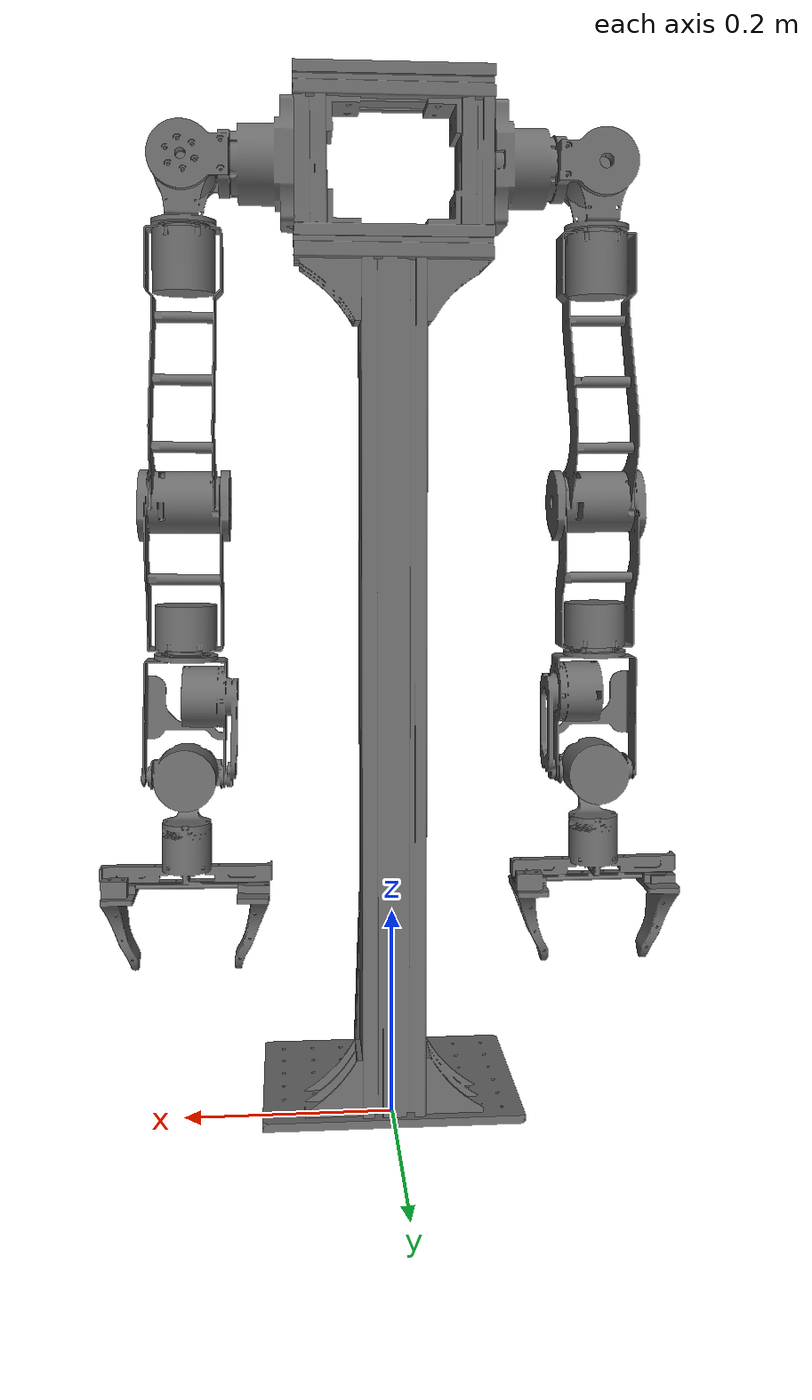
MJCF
<mujoco model="openarm_bimanual">
  <default>
    <default class="robot">
      <default class="motor">
        <joint armature="0.001" frictionloss="0.1"/>
        <motor ctrlrange="-0.2 0.2"/>
      </default>
      <default class="visual">
        <geom material="visualgeom" contype="0" conaffinity="0" group="2" />
      </default>
      <default class="collision">
        <geom condim="6" friction="0.8 0.02 0.01" group="3" />
      </default>
    </default>
  </default>

  <compiler angle="radian" />

  <asset>
    <material name="gray" rgba="0.4117647058823529 0.4117647058823529 0.4117647058823529 1.0" />
    <material name="dark_gray" rgba="0.19607843137254902 0.19607843137254902 0.19607843137254902 1.0" />
    <material name="default_material" rgba="0.7 0.7 0.7 1" />
    <mesh name="pedestal_link.stl" file="./meshes/pedestal_link.stl" />
    <mesh name="link1.stl" file="./meshes/link1.stl" />
    <mesh name="link2.stl" file="./meshes/link2.stl" />
    <mesh name="link3.stl" file="./meshes/link3.stl" />
    <mesh name="link4.stl" file="./meshes/link4.stl" />
    <mesh name="link5.stl" file="./meshes/link5.stl" />
    <mesh name="link6_rightarm.stl" file="./meshes/link6_rightarm.stl" />
    <mesh name="link7_rightarm.stl" file="./meshes/link7_rightarm.stl" />
    <mesh name="link8.stl" file="./meshes/link8.stl" />
    <mesh name="left_jaw.stl" file="./meshes/left_jaw.stl" />
    <mesh name="right_jaw.stl" file="./meshes/right_jaw.stl" />
    <mesh name="link6_leftarm.stl" file="./meshes/link6_leftarm.stl" />
    <mesh name="link7_leftarm.stl" file="./meshes/link7_leftarm.stl" />
  </asset>

  <worldbody>
    <body name="pedestal_link">
      <inertial pos="0.0 -0.0180451 0.410247" mass="4.850309883435878" diaginertia="0.6232810322991779 0.6253514495087933 0.02000994027356939" />
      <geom name="pedestal_link_collision" pos="0.0 0.0 0.489" type="box" size="0.09 0.03 0.489000000000002" class="collision" />
      <geom name="pedestal_link_visual" material="gray" type="mesh" mesh="pedestal_link.stl" class="visual" />
      <body name="right_dummy_link" pos="-0.09 0.0 0.893" quat="-0.707106781186572 3.011479954295737e-15 0.707106781186523 -3.0461744238152733e-15">
        <body name="right_link1">
          <inertial pos="0.0 2.52845e-05 0.0229621" mass="0.5769283920617254" diaginertia="0.00034035167574060775 0.0004300058300010205 0.0004802171432001996" />
          <geom name="right_link1_collision" pos="0.0 0.0 0.0289" type="box" size="0.055 0.0365 0.0296" class="collision" />
          <geom name="right_link1_visual" pos="0.0 0.0 -0.0007" material="gray" type="mesh" mesh="link1.stl" class="visual" />
          <body name="right_link2" pos="0.0 0.0 0.05325">
            <joint name="right_rev1" type="hinge" damping="4.0" range="-2.0943951023931953 2.0943951023931953" axis="0 0 1" />
            <inertial pos="-0.000225878 -0.00183836 0.0278368" mass="0.16257504134917358" diaginertia="0.00023903110213294374 0.00010490798314778774 0.00019737368685935776" />
            <geom name="right_link2_collision" pos="0.0 0.0 0.0371236" type="box" size="0.0295000000074506 0.04100000000000001 0.0371235749318674" class="collision" />
            <geom name="right_link2_visual" pos="0.0 0.0 -0.05395" material="gray" type="mesh" mesh="link2.stl" class="visual" />
            <body name="right_link3" pos="0.0 -0.02975 0.04475" quat="0.7071067811865475 -0.7071067811865476 0.0 0.0">
              <joint name="right_rev2" type="hinge" damping="4.0" range="-3.141592653589793 3.141592653589793" axis="0 0 1" />
              <inertial pos="-0.00688022 0.0 0.0282752" quat="0.7071067811865476 0.7071067811865475 0.0 0.0" mass="0.4201676469910031" diaginertia="0.00020256001126230057 0.0002970624991387495 0.00032889994351244413" />
              <geom name="right_link3_collision" pos="-0.0164466 -0.00045542 0.02975" quat="0.7071067811865476 0.7071067811865475 0.0 0.0" type="box" size="0.044945509017209395 0.03499999999999991 0.02951638473901506" class="collision" />
              <geom name="right_link3_visual" pos="0.0 0.0987 0.02975" quat="0.7071067811865476 0.7071067811865475 0.0 0.0" material="gray" type="mesh" mesh="link3.stl" class="visual" />
              <body name="right_link4" pos="-0.0612477 -0.000536432 0.02975" quat="0.5021847446228237 -0.5021847446228281 0.4978056671715473 -0.4978056671715428">
                <joint name="right_rev3" type="hinge" damping="4.0" range="-3.6651914291880923 0.5235987755982988" axis="0 0 -1" />
                <inertial pos="0.000781326 -0.0019461 -0.132411" quat="4.348699209552085e-17 0.7101964766624661 -4.310778323155519e-17 0.7040035259401896" mass="0.819475539373447" diaginertia="0.00044078452033976287 0.009208791480530413 0.009170539316023695" />
                <geom name="right_link4_collision" pos="0.000266276 -0.0125642 -0.132604" quat="4.348699209552085e-17 0.7101964766624661 -4.310778323155519e-17 0.7040035259401896" type="box" size="0.13792336888575168 0.041057145857910315 0.03593286589662931" class="collision" />
                <geom name="right_link4_visual" pos="-0.0986962 0.0 0.0621144" quat="4.348699209552085e-17 0.7101964766624661 -4.310778323155519e-17 0.7040035259401896" material="gray" type="mesh" mesh="link4.stl" class="visual" />
                <body name="right_link5" pos="0.0297547 0.0 -0.24175" quat="-0.001005087997693152 -0.707106066865571 0.0010050879976989252 -0.7071060668655987">
                  <joint name="right_rev4" type="hinge" damping="4.0" range="-0.3490658503988659 2.792526803190927" axis="0 0 1" />
                  <inertial pos="-0.0831891 0.00251789 -0.0290107" quat="0.999990411794371 0.0 -0.004379077451273085 0.0" mass="0.4086748254352304" diaginertia="0.00031417157425298747 0.001221711435313989 0.0010755135067660488" />
                  <geom name="right_link5_collision" pos="-0.0542814 0.00265291 -0.0302022" quat="0.999990411794371 0.0 -0.004379077451273042 0.0" type="box" size="0.08413606610312914 0.032152775241995855 0.041289299835704736" class="collision" />
                  <geom name="right_link5_visual" pos="0.303864 0.0 -0.128451" quat="0.999990411794371 0.0 -0.00437907745127333 0.0" material="gray" type="mesh" mesh="link5.stl" class="visual" />
                  <body name="right_link6" pos="-0.133937 0.00188408 -0.0297547" quat="0.34763733296752003 0.6205789736203802 0.33894208576135054 0.6157501804524711">
                    <joint name="right_rev5" type="hinge" damping="4.0" range="-2.0943951023931953 2.0943951023931953" axis="0 0 -1" />
                    <inertial pos="-0.00898536 -0.0135065 -0.0438611" quat="0.34614974610283633 -0.6232694411131999 -0.34046116671956284 -0.6130267131237719" mass="0.3448471958049249" diaginertia="0.00019355980999748924 0.0003486912031865755 0.00028774975153756256" />
                    <geom name="right_link6_collision" pos="-0.00260794 -0.00312921 -0.0652641" quat="0.34614974610283633 -0.6232694411131999 -0.34046116671956284 -0.6130267131237719" type="box" size="0.06557176502352383 0.029767391626508724 0.044085980975409396" class="collision" />
                    <geom name="right_link6_visual" pos="-0.0485412 -0.0860404 0.437784" quat="0.3461497461028344 -0.623269441113201 -0.34046116671956095 -0.613026713123773" material="gray" type="mesh" mesh="link6_rightarm.stl" class="visual" />
                    <body name="right_link7" pos="-0.0187648 -0.0301352 -0.12105" quat="0.34763733296609317 -0.6205789736211915 -0.33894208575997453 -0.6157501804532163">
                      <joint name="right_rev6" type="hinge" damping="4.0" range="-1.5707963267948966 1.5707963267948966" axis="0 0 1" />
                      <inertial pos="5.99432e-05 0.0041433 0.0354274" quat="0.9999904117943706 0.0 -0.004379077451370153 0.0" mass="0.2782138078738053" diaginertia="0.00010424153315648891 0.00012313550743283462 9.221319958512582e-05" />
                      <geom name="right_link7_collision" pos="-0.000318103 0.0022839 0.0340014" quat="0.9999904117943706 0.0 -0.004379077451370189 0.0" type="box" size="0.029163701087566437 0.022164583493768306 0.04133800811205876" class="collision" />
                      <geom name="right_link7_visual" pos="0.558839 -0.00358671 -0.0631962" quat="0.9999904117943706 0.0 -0.004379077451370058 0.0" material="gray" type="mesh" mesh="link7_rightarm.stl" class="visual" />
                      <body name="right_link8" pos="-0.000217313 -0.0154485 0.0355" quat="0.7070607328647779 -0.707104291841532 0.0018762887137826994 -0.008069698920733642">
                        <joint name="right_rev7" type="hinge" damping="4.0" range="-0.9599310885968813 0.9599310885968813" axis="0 0 -1" />
                        <inertial pos="-0.0607602 -0.000341696 0.00876618" quat="0.7070457370075183 0.7071328498167253 -0.004972544435576203 0.004973157086628345" mass="0.31261452743802165" diaginertia="0.00023465661366788053 0.0005065459365215377 0.0003737029250058136" />
                        <geom name="right_link8_collision" pos="-0.042694 -0.000543176 0.0110286" quat="0.7070457370075183 0.7071328498167253 -0.004972544435576203 0.004973157086628345" type="box" size="0.06519399835871827 0.02590443846344463 0.08006183817204335" class="collision" />
                        <geom name="right_link8_visual" pos="0.557948 0.103587 0.019724" quat="0.7070457370075183 0.7071328498167253 -0.004972544435576206 0.0049731570866283475" material="gray" type="mesh" mesh="link8.stl" class="visual" />
                        <body name="right_link_left_jaw" pos="-0.1071 0.0768568 0.0132053" quat="0.707060732864742 0.7071042918415676 -0.0018762887137609321 0.00806969892075141">
                          <joint name="right_left_pris1" type="slide" range="-0.0451 0.0" axis="0 0 -1" />
                          <inertial pos="-0.0187138 0.00217075 0.0159499" quat="0.9999904117943706 0.0 -0.004379077451349346 0.0" mass="0.04297897856394934" diaginertia="1.1771768742932353e-05 2.3837354480794824e-05 3.0474590214086944e-05" />
                          <geom name="right_link_left_jaw_collision" pos="0.665265 -0.00286677 -0.0209282" quat="0.9999904117943706 0.0 -0.004379077451349382 0.0" type="mesh" mesh="left_jaw.stl" class="collision" />
                          <geom name="right_link_left_jaw_visual" pos="0.665265 -0.00286677 -0.0209282" quat="0.9999904117943706 0.0 -0.004379077451349348 0.0" material="gray" type="mesh" mesh="left_jaw.stl" class="visual" />
                        </body>
                        <body name="right_link_right_jaw" pos="-0.10571 -0.0781373 0.0132053" quat="0.7070607328648157 0.7071042918414913 -0.0018762887134541077 0.008069698921057647">
                          <joint name="right_right_pris2" type="slide" range="-0.0451 0.0" axis="0 0 1" />
                          <inertial pos="-0.0187844 -0.00272415 -0.0159503" quat="0.999990411794363 0.0 -0.004379077453115355 0.0" mass="0.042981665301134515" diaginertia="1.1561293087621594e-05 2.370165527871047e-05 3.039652946542647e-05" />
                          <geom name="right_link_right_jaw_collision" pos="0.665265 -0.00286677 -0.175928" quat="0.999990411794363 0.0 -0.004379077453115391 0.0" type="mesh" mesh="right_jaw.stl" class="collision" />
                          <geom name="right_link_right_jaw_visual" pos="0.665265 -0.00286677 -0.175928" quat="0.999990411794363 0.0 -0.004379077453115357 0.0" material="gray" type="mesh" mesh="right_jaw.stl" class="visual" />
                        </body>
                        <body name="right_gripper_center" pos="-0.13 0.00 0.0132053" />
                      </body>
                    </body>
                  </body>
                </body>
              </body>
            </body>
          </body>
        </body>
      </body>
      <body name="left_dummy_link" pos="0.09 0.0 0.893" quat="7.759180756218564e-05 0.7071067769294417 -7.759180755642636e-05 0.7071067769293966">
        <body name="left_link1">
          <inertial pos="0.0 2.52845e-05 0.0229621" mass="0.5769283920617254" diaginertia="0.00034035167574060775 0.0004300058300010205 0.0004802171432001996" />
          <geom name="left_link1_collision" pos="0.0 0.0 0.0289" type="box" size="0.055 0.0365 0.0296" class="collision" />
          <geom name="left_link1_visual" pos="0.0 0.0 -0.0007" material="gray" type="mesh" mesh="link1.stl" class="visual" />
          <body name="left_link2" pos="0.0 0.0 0.05325">
            <joint name="left_rev1" type="hinge" damping="4.0" range="-2.0943951023931953 2.0943951023931953" axis="0 0 1" />
            <inertial pos="-0.000225878 -0.00183836 0.0278368" mass="0.16257504134917358" diaginertia="0.00023903110213294374 0.00010490798314778774 0.00019737368685935776" />
            <geom name="left_link2_collision" pos="0.0 0.0 0.0371236" type="box" size="0.0295000000074506 0.04100000000000001 0.0371235749318674" class="collision" />
            <geom name="left_link2_visual" pos="0.0 0.0 -0.05395" material="gray" type="mesh" mesh="link2.stl" class="visual" />
            <body name="left_link3" pos="0.0 -0.02975 0.04475" quat="0.7071067811865475 -0.7071067811865476 0.0 0.0">
              <joint name="left_rev2" type="hinge" damping="4.0" range="0.0 3.141592653589793" axis="0 0 1" />
              <inertial pos="-0.00688022 0.0 0.0282752" quat="0.7071067811865476 0.7071067811865475 0.0 0.0" mass="0.4201676469910031" diaginertia="0.00020256001126230057 0.0002970624991387495 0.00032889994351244413" />
              <geom name="left_link3_collision" pos="-0.0164466 -0.00045542 0.02975" quat="0.7071067811865476 0.7071067811865475 0.0 0.0" type="box" size="0.044945509017209395 0.03499999999999991 0.02951638473901506" class="collision" />
              <geom name="left_link3_visual" pos="0.0 0.0987 0.02975" quat="0.7071067811865476 0.7071067811865475 0.0 0.0" material="gray" type="mesh" mesh="link3.stl" class="visual" />
              <body name="left_link4" pos="-0.0612477 -0.000536432 0.02975" quat="0.49780566717154734 0.49780566717154273 0.5021847446228237 0.5021847446228281">
                <joint name="left_rev3" type="hinge" damping="4.0" range="-3.6651914291880923 0.5235987755982988" axis="0 0 -1" />
                <inertial pos="0.000781326 -0.0019461 -0.132411" quat="4.348699209552085e-17 0.7101964766624661 -4.310778323155519e-17 0.7040035259401896" mass="0.819475539373447" diaginertia="0.00044078452033976287 0.009208791480530413 0.009170539316023695" />
                <geom name="left_link4_collision" pos="0.000266276 -0.0125642 -0.132604" quat="4.348699209552085e-17 0.7101964766624661 -4.310778323155519e-17 0.7040035259401896" type="box" size="0.13792336888575168 0.041057145857910315 0.03593286589662931" class="collision" />
                <geom name="left_link4_visual" pos="-0.0986962 0.0 0.0621144" quat="4.348699209552085e-17 0.7101964766624661 -4.310778323155519e-17 0.7040035259401896" material="gray" type="mesh" mesh="link4.stl" class="visual" />
                <body name="left_link5" pos="0.0297547 0.0 -0.24175" quat="-0.001005087997693152 -0.707106066865571 0.0010050879976989252 -0.7071060668655987">
                  <joint name="left_rev4" type="hinge" damping="4.0" range="-0.3490658503988659 2.792526803190927" axis="0 0 1" />
                  <inertial pos="-0.0831891 0.00251789 -0.0290107" quat="0.999990411794371 0.0 -0.004379077451273085 0.0" mass="0.4086748254352304" diaginertia="0.00031417157425298747 0.001221711435313989 0.0010755135067660488" />
                  <geom name="left_link5_collision" pos="-0.0542814 0.00265291 -0.0302022" quat="0.999990411794371 0.0 -0.004379077451273042 0.0" type="box" size="0.08413606610312914 0.032152775241995855 0.041289299835704736" class="collision" />
                  <geom name="left_link5_visual" pos="0.303864 0.0 -0.128451" quat="0.999990411794371 0.0 -0.00437907745127333 0.0" material="gray" type="mesh" mesh="link5.stl" class="visual" />
                  <body name="left_link6" pos="-0.133937 0.00188408 -0.0297547" quat="0.34763733296752003 0.6205789736203802 0.33894208576135054 0.6157501804524711">
                    <joint name="left_rev5" type="hinge" damping="4.0" range="-2.0943951023931953 2.0943951023931953" axis="0 0 -1" />
                    <inertial pos="-0.00898536 -0.0135065 -0.0438611" quat="0.34614974610283633 -0.6232694411131999 -0.34046116671956284 -0.6130267131237719" mass="0.3448471958049249" diaginertia="0.00019355980999748924 0.0003486912031865755 0.00028774975153756256" />
                    <geom name="left_link6_collision" pos="-0.00260794 -0.00312921 -0.0652641" quat="0.34614974610283633 -0.6232694411131999 -0.34046116671956284 -0.6130267131237719" type="box" size="0.06557176502352383 0.029767391626508724 0.044085980975409396" class="collision" />
                    <geom name="left_link6_visual" pos="0.0605412 0.0878404 0.435484" quat="0.34046116671956095 0.613026713123773 0.3461497461028344 -0.623269441113201" material="gray" type="mesh" mesh="link6_leftarm.stl" class="visual" />
                    <body name="left_link7" pos="-0.0187648 -0.0301352 -0.12105" quat="0.34763733296609317 -0.6205789736211915 -0.33894208575997453 -0.6157501804532163">
                      <joint name="left_rev6" type="hinge" damping="4.0" range="-1.5707963267948966 1.5707963267948966" axis="0 0 -1" />
                      <inertial pos="5.99432e-05 0.0041433 0.0354274" quat="0.9999904117943706 0.0 -0.004379077451370153 0.0" mass="0.2782138078738053" diaginertia="0.00010424153315648891 0.00012313550743283462 9.221319958512582e-05" />
                      <geom name="left_link7_collision" pos="-0.000318103 0.0022839 0.0340014" quat="0.9999904117943706 0.0 -0.004379077451370189 0.0" type="box" size="0.029163701087566437 0.022164583493768306 0.04133800811205876" class="collision" />
                      <geom name="left_link7_visual" pos="0.558839 -0.0034132900000000002 0.1341962" quat="-0.004379077451370027 -0.0 0.9999904117943706 -0.0" material="gray" type="mesh" mesh="link7_leftarm.stl" class="visual" />
                      <body name="left_link8" pos="-0.000217313 -0.0154485 0.0355" quat="0.7070607328647779 -0.707104291841532 0.0018762887137826994 -0.008069698920733642">
                        <joint name="left_rev7" type="hinge" damping="4.0" range="-0.9599310885968813 0.9599310885968813" axis="0 0 -1" />
                        <inertial pos="-0.0607602 -0.000341696 0.00876618" quat="0.7070457370075183 0.7071328498167253 -0.004972544435576203 0.004973157086628345" mass="0.31261452743802165" diaginertia="0.00023465661366788053 0.0005065459365215377 0.0003737029250058136" />
                        <geom name="left_link8_collision" pos="-0.042694 -0.000543176 0.0110286" quat="0.7070457370075183 0.7071328498167253 -0.004972544435576203 0.004973157086628345" type="box" size="0.06519399835871827 0.02590443846344463 0.08006183817204335" class="collision" />
                        <geom name="left_link8_visual" pos="0.557948 0.103587 0.019724" quat="0.7070457370075183 0.7071328498167253 -0.004972544435576206 0.0049731570866283475" material="gray" type="mesh" mesh="link8.stl" class="visual" />
                        <body name="left_link_left_jaw" pos="-0.1071 0.0768568 0.0132053" quat="0.707060732864742 0.7071042918415676 -0.0018762887137609321 0.00806969892075141">
                          <joint name="left_left_pris1" type="slide" range="-0.0451 0.0" axis="0 0 -1" />
                          <inertial pos="-0.0187138 0.00217075 0.0159499" quat="0.9999904117943706 0.0 -0.004379077451349346 0.0" mass="0.04297897856394934" diaginertia="1.1771768742932353e-05 2.3837354480794824e-05 3.0474590214086944e-05" />
                          <geom name="left_link_left_jaw_collision" pos="0.665265 -0.00286677 -0.0209282" quat="0.9999904117943706 0.0 -0.004379077451349382 0.0" type="mesh" mesh="left_jaw.stl" class="collision" />
                          <geom name="left_link_left_jaw_visual" pos="0.665265 -0.00286677 -0.0209282" quat="0.9999904117943706 0.0 -0.004379077451349348 0.0" material="gray" type="mesh" mesh="left_jaw.stl" class="visual" />
                        </body>
                        <body name="left_link_right_jaw" pos="-0.10571 -0.0781373 0.0132053" quat="0.7070607328648157 0.7071042918414913 -0.0018762887134541077 0.008069698921057647">
                          <joint name="left_right_pris2" type="slide" class="motor" range="-0.0451 0.0" axis="0 0 1" />
                          <inertial pos="-0.0187844 -0.00272415 -0.0159503" quat="0.999990411794363 0.0 -0.004379077453115355 0.0" mass="0.042981665301134515" diaginertia="1.1561293087621594e-05 2.370165527871047e-05 3.039652946542647e-05" />
                          <geom name="left_link_right_jaw_collision" pos="0.665265 -0.00286677 -0.175928" quat="0.999990411794363 0.0 -0.004379077453115391 0.0" type="mesh" mesh="right_jaw.stl" class="collision" />
                          <geom name="left_link_right_jaw_visual" pos="0.665265 -0.00286677 -0.175928" quat="0.999990411794363 0.0 -0.004379077453115357 0.0" material="gray" type="mesh" mesh="right_jaw.stl" class="visual" />
                        </body>
                        <body name="left_gripper_center" pos="-0.13 0.00 0.0132053" />
                      </body>
                    </body>
                  </body>
                </body>
              </body>
            </body>
          </body>
        </body>
      </body>
    </body>
    <site name="world_site" />
    <camera name="front_camera" mode="track" fovy="90.0" quat="4.329780281177467e-17 4.329780281177466e-17 0.7071067811865475 0.7071067811865476" pos="0.0 2.0 0.5" />
    <camera name="side_camera" mode="track" fovy="90.0" quat="-0.5 -0.4999999999999999 0.5 0.5000000000000001" pos="-2.0 0.0 0.5" />
  </worldbody>

  <tendon>
    <fixed name="left_split">
      <joint joint="left_left_pris1" coef="0.5"/>
      <joint joint="left_right_pris2" coef="0.5"/>
    </fixed>
  </tendon>
  <equality>
    <joint joint1="left_left_pris1" joint2="left_right_pris2" solimp="0.95 0.99 0.001" solref="0.005 1"/>
  </equality>
  <tendon>
    <fixed name="right_split">
      <joint joint="right_left_pris1" coef="0.5"/>
      <joint joint="right_right_pris2" coef="0.5"/>
    </fixed>
  </tendon>
  <equality>
    <joint joint1="right_left_pris1" joint2="right_right_pris2" solimp="0.95 0.99 0.001" solref="0.005 1"/>
  </equality>

  <actuator>
    <position name="right_rev1_ctrl" joint="right_rev1" kp="10" ctrlrange="-0.7853981633974483 2.0943951023931953" ctrllimited="true" forcelimited="true" forcerange="-27 27" />
    <position name="right_rev2_ctrl" joint="right_rev2" kp="10" ctrlrange="-0.17453292519943295 2.9670597283903604" ctrllimited="true" forcelimited="true" forcerange="-27 27" />
    <position name="right_rev3_ctrl" joint="right_rev3" kp="15" ctrlrange="-2.0943951023931953 2.0943951023931953" ctrllimited="true" forcelimited="true" forcerange="-27 27" />
    <position name="right_rev4_ctrl" joint="right_rev4" kp="10" ctrlrange="0 2.617993877991494" ctrllimited="true" forcelimited="true" forcerange="-27 27" />
    <position name="right_rev5_ctrl" joint="right_rev5" kp="15" ctrlrange="-2.0943951023931953 2.094395102393195" ctrllimited="true" forcelimited="true" forcerange="-7 7"/>
    <position name="right_rev6_ctrl" joint="right_rev6" kp="15" ctrlrange="-1.5707963267948966 1.5707963267948966" ctrllimited="true" forcelimited="true" forcerange="-7 7"/>
    <position name="right_rev7_ctrl" joint="right_rev7" kp="15" ctrlrange="-0.9599310885968811 0.9599310885968811" ctrllimited="true" forcelimited="true" forcerange="-7 7"/>

    <!-- Left Arm -->
    <position name="left_rev1_ctrl" joint="left_rev1" kp="10" ctrlrange="-2.0943951023931953 0.7853981633974483" ctrllimited="true" forcelimited="true" forcerange="-27 27"/>
    <position name="left_rev2_ctrl" joint="left_rev2" kp="10" ctrlrange="-0.17453292519943295 2.9670597283903604" ctrllimited="true" forcelimited="true" forcerange="-27 27"/>
    <position name="left_rev3_ctrl" joint="left_rev3" kp="15" ctrlrange="-2.0943951023931953 2.0943951023931953" ctrllimited="true" forcelimited="true" forcerange="-27 27"/>
    <position name="left_rev4_ctrl" joint="left_rev4" kp="10" ctrlrange="0 2.6179938779914944" ctrllimited="true" forcelimited="true" forcerange="-27 27"/>
    <position name="left_rev5_ctrl" joint="left_rev5" kp="15" ctrlrange="-2.0943951023931953 2.0943951023931953" ctrllimited="true" forcelimited="true" forcerange="-7 7"/>
    <position name="left_rev6_ctrl" joint="left_rev6" kp="15" ctrlrange="-1.5707963267948966 1.5707963267948966" ctrllimited="true" forcelimited="true" forcerange="-7 7"/>
    <position name="left_rev7_ctrl" joint="left_rev7" kp="15" ctrlrange="-0.9599310885968811 0.9599310885968811" ctrllimited="true" forcelimited="true" forcerange="-7 7"/>

    <!-- Grippers (optional, keep as motor or switch to position if desired) -->
    <position name="right_left_pris1_ctrl" joint="right_left_pris1" kp="10" ctrlrange="-0.0451 0.0" ctrllimited="true" forcelimited="true" forcerange="-3 3"/>
    <position name="left_left_pris1_ctrl" joint="left_left_pris1" kp="10" ctrlrange="-0.0451 0.0" ctrllimited="true" forcelimited="true" forcerange="-3 3"/>
  </actuator>

  <contact>
    <exclude body1="right_link1" body2="right_link2" />
    <exclude body1="right_link1" body2="right_link3" />
    <exclude body1="right_link1" body2="right_link4" />
    <exclude body1="right_link2" body2="right_link3" />
    <exclude body1="right_link3" body2="right_link4" />
    <exclude body1="right_link4" body2="right_link5" />
    <exclude body1="right_link5" body2="right_link6" />
    <exclude body1="right_link6" body2="right_link7" />
    <exclude body1="right_link6" body2="right_link8" />
    <exclude body1="right_link7" body2="right_link8" />
    <exclude body1="right_link8" body2="right_link_left_jaw" />
    <exclude body1="right_link8" body2="right_link_right_jaw" />
    <exclude body1="left_link1" body2="left_link2" />
    <exclude body1="left_link1" body2="left_link3" />
    <exclude body1="left_link1" body2="left_link4" />
    <exclude body1="left_link2" body2="left_link4" />
    <exclude body1="left_link2" body2="left_link3" />
    <exclude body1="left_link3" body2="left_link4" />
    <exclude body1="left_link4" body2="left_link5" />
    <exclude body1="left_link5" body2="left_link6" />
    <exclude body1="left_link6" body2="left_link7" />
    <exclude body1="left_link6" body2="left_link8" />
    <exclude body1="left_link7" body2="left_link8" />
    <exclude body1="left_link8" body2="left_link_left_jaw" />
    <exclude body1="left_link8" body2="left_link_right_jaw" />
  </contact>

  <sensor>
    <framepos name="base_link_pos" objtype="site" objname="world_site" />
    <framequat name="base_link_quat" objtype="site" objname="world_site" />
    <framelinvel name="base_link_vel" objtype="site" objname="world_site" />
    <frameangvel name="base_link_ang_vel" objtype="site" objname="world_site" />
  </sensor>
</mujoco>
